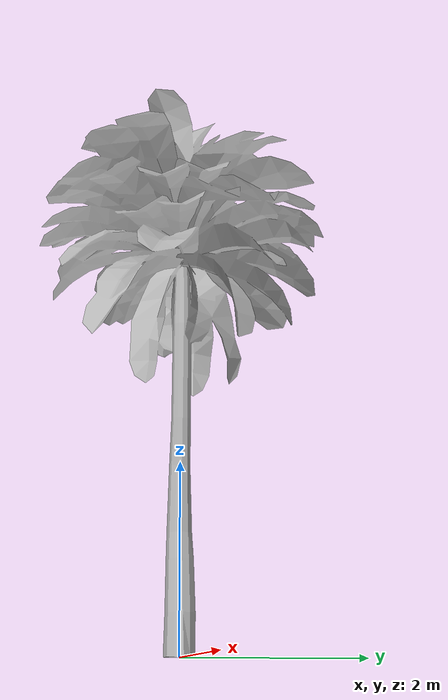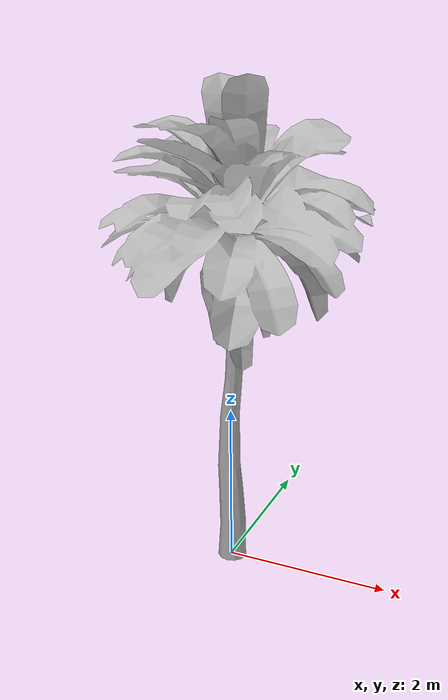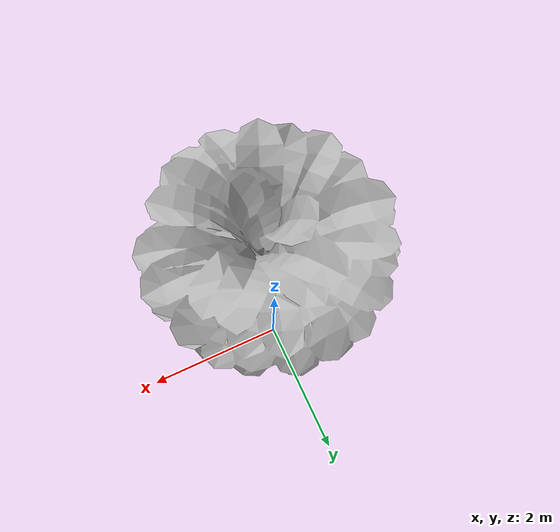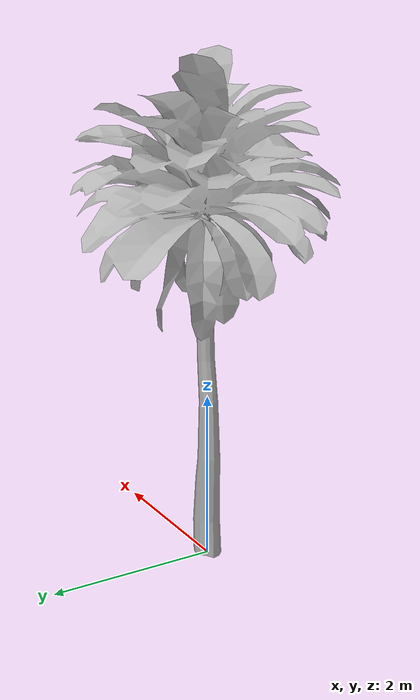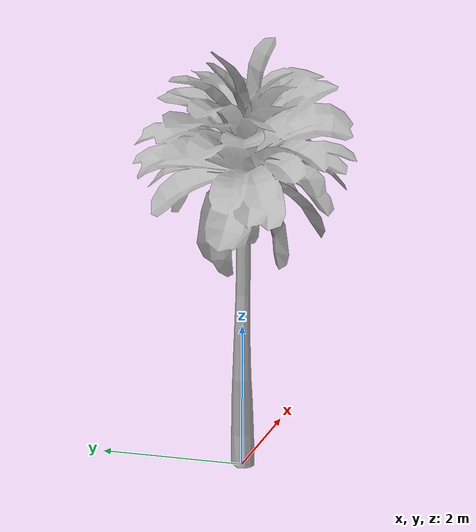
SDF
<?xml version="1.0" ?>
<sdf version="1.6">
  <model name="palm_tree_realistic">
    <static>true</static>
    <link name="link">
      <visual name="visual">
        <geometry>
          <mesh>
            <uri>model://palm_tree_realistic/Untitled.obj</uri>
            <scale>0.837849 0.837849 0.837849</scale>
          </mesh>
        </geometry>
      </visual>
                  <collision name="collision">
        <geometry>
          <mesh>
            <uri>model://palm_tree_realistic/Untitled.obj</uri>
            <scale>0.837849 0.837849 0.837849</scale>
          </mesh>
        </geometry>
      </collision>
    </link>
  </model>
</sdf>
